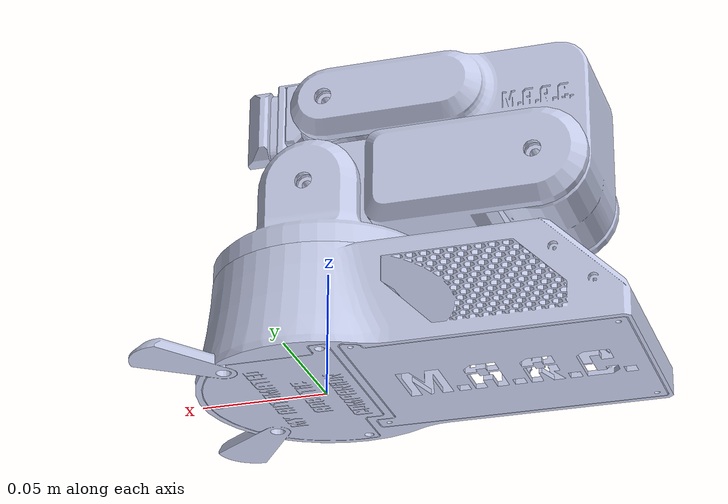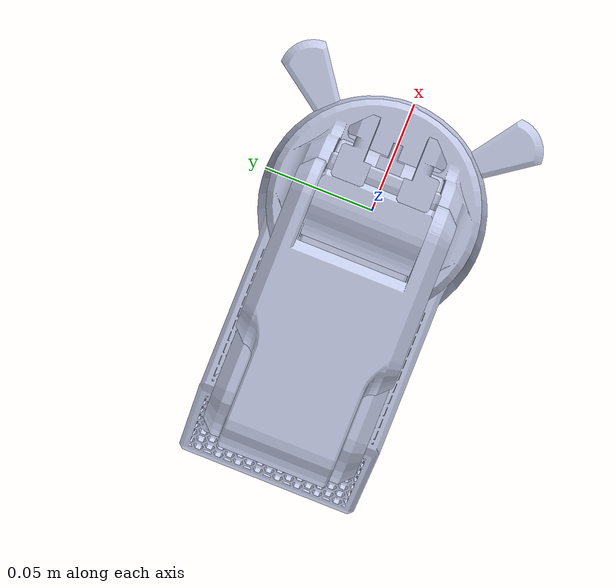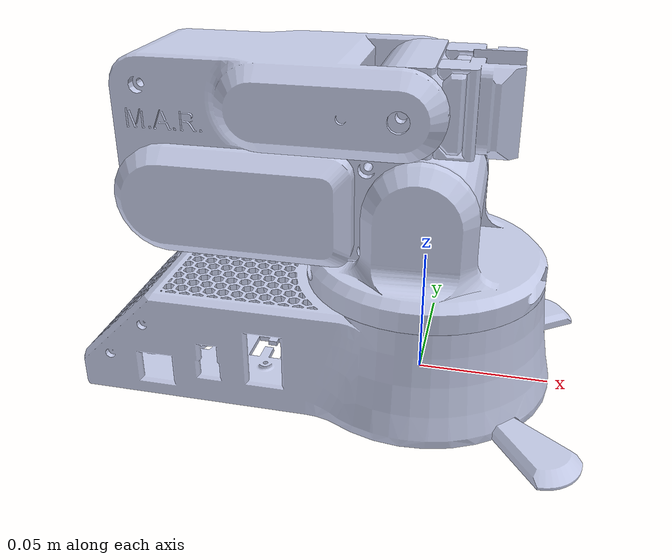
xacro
<?xml version="1.0"?>
<robot xmlns:xacro="http://www.ros.org/wiki/xacro" name="marc_urdf">
    <xacro:arg name="initial_positions_file" default="initial_positions.yaml" />

    <!-- Import marc_urdf urdf file -->
    <xacro:include filename="$(find marc_urdf)/urdf/marc_urdf.urdf" />

    <!-- Import control_xacro -->
    <xacro:include filename="marc_urdf.ros2_control.xacro" />

    <xacro:marc_urdf_ros2_control name="FakeSystem" initial_positions_file="$(arg initial_positions_file)"/>

</robot>

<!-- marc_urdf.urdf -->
<robot
  name="marc_urdf">

    <link name="world"/>

  <joint name="world_joint" type="fixed">
    <parent link="world"/>
    <child link="base_link"/>
    <origin xyz="0 0 0" rpy="0 0 0"/>
  </joint>

  <link
    name="base_link">
    <inertial>
      <origin
        xyz="-0.019326 -0.0015141 0.022149"
        rpy="0 0 0" />
      <mass
        value="0.13112" />
      <inertia
        ixx="0.00013465"
        ixy="-7.8684E-06"
        ixz="-7.1281E-09"
        iyy="0.00021462"
        iyz="2.4514E-06"
        izz="0.0003101" />
    </inertial>
    <visual>
      <origin
        xyz="0 0 0"
        rpy="0 0 0" />
      <geometry>
        <mesh
          filename="package://marc_urdf/meshes/base_link.STL" />
      </geometry>
      <material
        name="">
        <color
          rgba="0.79216 0.81961 0.93333 1" />
      </material>
    </visual>
    <collision>
      <origin
        xyz="0 0 0"
        rpy="0 0 0" />
      <geometry>
        <mesh
          filename="package://marc_urdf/meshes/base_link.STL" />
      </geometry>
    </collision>
  </link>
  <link
    name="shoulder_link">
    <inertial>
      <origin
        xyz="-0.00061872 -0.0022185 0.013845"
        rpy="0 0 0" />
      <mass
        value="0.055252" />
      <inertia
        ixx="1.5922E-05"
        ixy="1.9743E-08"
        ixz="-8.4955E-08"
        iyy="3.3192E-05"
        iyz="7.5752E-08"
        izz="3.0288E-05" />
    </inertial>
    <visual>
      <origin
        xyz="0 0 0"
        rpy="0 0 0" />
      <geometry>
        <mesh
          filename="package://marc_urdf/meshes/shoulder_link.STL" />
      </geometry>
      <material
        name="">
        <color
          rgba="0.79216 0.81961 0.93333 1" />
      </material>
    </visual>
    <collision>
      <origin
        xyz="0 0 0"
        rpy="0 0 0" />
      <geometry>
        <mesh
          filename="package://marc_urdf/meshes/shoulder_link.STL" />
      </geometry>
    </collision>
  </link>
  <joint
    name="shoulder_joint"
    type="revolute">
    <origin
      xyz="0 0 0.043"
      rpy="0 0 0" />
    <parent
      link="base_link" />
    <child
      link="shoulder_link" />
    <axis
      xyz="0 0 -1" />
    <limit
      lower="-1.57"
      upper="1.57"
      effort="1.5"
      velocity="1.5" />
  </joint>
  <link
    name="upper_arm_link">
    <inertial>
      <origin
        xyz="-0.044247 -0.034464 -0.00034511"
        rpy="0 0 0" />
      <mass
        value="0.074807" />
      <inertia
        ixx="1.773E-05"
        ixy="-2.1148E-06"
        ixz="-5.6426E-07"
        iyy="8.8688E-05"
        iyz="1.1069E-08"
        izz="8.1791E-05" />
    </inertial>
    <visual>
      <origin
        xyz="0 0 0"
        rpy="0 0 0" />
      <geometry>
        <mesh
          filename="package://marc_urdf/meshes/upper_arm_link.STL" />
      </geometry>
      <material
        name="">
        <color
          rgba="0.79216 0.81961 0.93333 1" />
      </material>
    </visual>
    <collision>
      <origin
        xyz="0 0 0"
        rpy="0 0 0" />
      <geometry>
        <mesh
          filename="package://marc_urdf/meshes/upper_arm_link.STL" />
      </geometry>
    </collision>
  </link>
  <joint
    name="upper_arm_joint"
    type="revolute">
    <origin
      xyz="0 0.029499 0.0325"
      rpy="0 0 0" />
    <parent
      link="shoulder_link" />
    <child
      link="upper_arm_link" />
    <axis
      xyz="0 -1 0" />
    <limit
      lower="-3.14"
      upper="0"
      effort="1.5"
      velocity="1.5" />
  </joint>
  <link
    name="elbow_link">
    <inertial>
      <origin
        xyz="0.025893 -0.031113 0.026699"
        rpy="0 0 0" />
      <mass
        value="0.071354" />
      <inertia
        ixx="3.0153E-05"
        ixy="-1.2234E-06"
        ixz="-1.1982E-05"
        iyy="8.521E-05"
        iyz="-1.1176E-07"
        izz="6.3508E-05" />
    </inertial>
    <visual>
      <origin
        xyz="0 0 0"
        rpy="0 0 0" />
      <geometry>
        <mesh
          filename="package://marc_urdf/meshes/elbow_link.STL" />
      </geometry>
      <material
        name="">
        <color
          rgba="0.79216 0.81961 0.93333 1" />
      </material>
    </visual>
    <collision>
      <origin
        xyz="0 0 0"
        rpy="0 0 0" />
      <geometry>
        <mesh
          filename="package://marc_urdf/meshes/elbow_link.STL" />
      </geometry>
    </collision>
  </link>
  <joint
    name="elbow_joint"
    type="revolute">
    <origin
      xyz="-0.09 0 0"
      rpy="0 0 0" />
    <parent
      link="upper_arm_link" />
    <child
      link="elbow_link" />
    <axis
      xyz="0 -1 0" />
    <limit
      lower="0"
      upper="3.14"
      effort="10.5"
      velocity="1.5" />
  </joint>
  <link
    name="wrist_link">
    <inertial>
      <origin
        xyz="0.0031708 -0.028752 9.5281E-06"
        rpy="0 0 0" />
      <mass
        value="0.027875" />
      <inertia
        ixx="9.2319E-06"
        ixy="-4.769E-07"
        ixz="9.4703E-10"
        iyy="3.9611E-06"
        iyz="-1.3442E-09"
        izz="8.8951E-06" />
    </inertial>
    <visual>
      <origin
        xyz="0 0 0"
        rpy="0 0 0" />
      <geometry>
        <mesh
          filename="package://marc_urdf/meshes/wrist_link.STL" />
      </geometry>
      <material
        name="">
        <color
          rgba="0.79216 0.81961 0.93333 1" />
      </material>
    </visual>
    <collision>
      <origin
        xyz="0 0 0"
        rpy="0 0 0" />
      <geometry>
        <mesh
          filename="package://marc_urdf/meshes/wrist_link.STL" />
      </geometry>
    </collision>
  </link>
  <joint
    name="wrist_joint"
    type="revolute">
    <origin
      xyz="0.082703 0 0.0355"
      rpy="0 0 0" />
    <parent
      link="elbow_link" />
    <child
      link="wrist_link" />
    <axis
      xyz="0 1 0" />
    <limit
      lower="-1.57"
      upper="1.57"
      effort="10.5"
      velocity="1.5" />
  </joint>
  <link
    name="ee_link">
    <inertial>
      <origin
        xyz="-0.0057006 1.9829E-06 -0.00036295"
        rpy="0 0 0" />
      <mass
        value="0.010567" />
      <inertia
        ixx="9.4856E-07"
        ixy="2.218E-21"
        ixz="1.3268E-09"
        iyy="1.2637E-06"
        iyz="8.2325E-21"
        izz="4.7796E-07" />
    </inertial>
    <visual>
      <origin
        xyz="0 0 0"
        rpy="0 0 0" />
      <geometry>
        <mesh
          filename="package://marc_urdf/meshes/ee_link.STL" />
      </geometry>
      <material
        name="">
        <color
          rgba="0.79216 0.81961 0.93333 1" />
      </material>
    </visual>
    <collision>
      <origin
        xyz="0 0 0"
        rpy="0 0 0" />
      <geometry>
        <mesh
          filename="package://marc_urdf/meshes/ee_link.STL" />
      </geometry>
    </collision>
  </link>
  <joint
    name="ee_joint"
    type="fixed">
    <origin
      xyz="0.031 -0.0295 8.7404E-05"
      rpy="0 0 0" />
    <parent
      link="wrist_link" />
    <child
      link="ee_link" />
    <axis
      xyz="0 0 0" />
    <limit
      lower="0"
      upper="0"
      effort="0"
      velocity="0" />
  </joint>

  <link name="ee_rotation_x"/>
  <joint name="ee_rotation_joint_x" type="revolute">
    <origin xyz="0 0 0" rpy="0 0 0"/>
    <parent link="ee_link"/>
    <child link="ee_rotation_x"/>
    <axis xyz="1 0 0"/>
    <limit lower="-3.1416" upper="3.1416" effort="1.5" velocity="1.5"/>
  </joint>

  <link name="ee_rotation_y"/>
  <joint name="ee_rotation_joint_y" type="revolute">
    <origin xyz="0 0 0" rpy="0 0 0"/>
    <parent link="ee_rotation_x"/>
    <child link="ee_rotation_y"/>
    <axis xyz="0 1 0"/>
    <limit lower="-3.1416" upper="3.1416" effort="1.5" velocity="1.5"/>
  </joint>

  <link name="ee_rotation_z"/>
  <joint name="ee_rotation_joint_z" type="revolute">
    <origin xyz="0 0 0" rpy="0 0 0"/>
    <parent link="ee_rotation_y"/>
    <child link="ee_rotation_z"/>
    <axis xyz="0 0 1"/>
    <limit lower="-3.1416" upper="3.1416" effort="1.5" velocity="1.5"/>
  </joint>

</robot>
